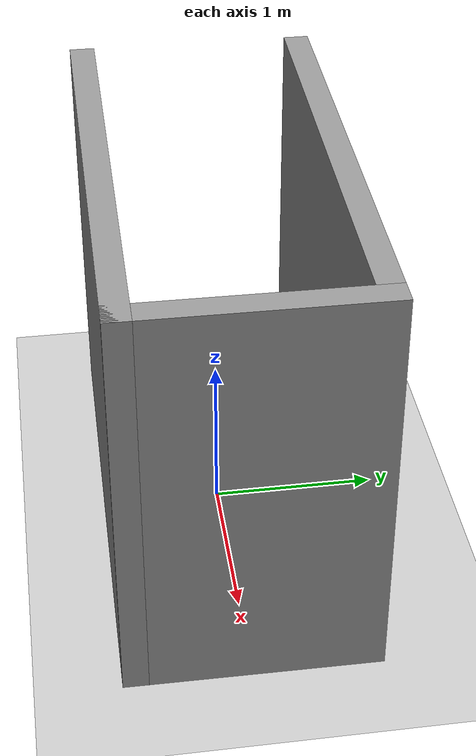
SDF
<sdf version="1.6">
 <world name="default">
  <light name="sun" type="directional">
   <pose>0 0 10 0 -0 0</pose>
   <diffuse>0.8 0.8 0.8 1</diffuse>
   <specular>0.2 0.2 0.2 1</specular>
   <attenuation>
    <range>1000</range>
    <constant>0.9</constant>
    <linear>0.01</linear>
    <quadratic>0.001</quadratic>
   </attenuation>
   <direction>0.5 0.1 -0.9</direction>
  </light>
  <scene><ambient>0.4 0.4 0.4 1</ambient><background>0.7 0.7 0.7 1</background><shadows>1</shadows></scene>
  <physics name="default_physics" default="0" type="ode">
   <max_step_size>0.01</max_step_size>
   <real_time_factor>1</real_time_factor>
   <real_time_update_rate>100</real_time_update_rate>
  </physics>
  <model name="Hallway">
   <pose>0.063044 0.023302 0 0 -0 3.13417</pose>
   <link name="Wall_31">
    <collision name="Wall_31_Collision">
     <geometry><box><size>3 0.15 2.5</size></box></geometry>
     <pose>0 0 1.25 0 -0 0</pose>
    </collision>
    <visual name="Wall_31_Visual">
     <pose>0 0 1.25 0 -0 0</pose>
     <geometry><box><size>3 0.15 2.5</size></box></geometry>
     <material>
      <script><uri>file://media/materials/scripts/gazebo.material</uri><name>Gazebo/Grey</name></script>
      <ambient>1 1 1 1</ambient>
     </material>
    </visual>
    <pose>0 0.675 0 0 -0 0</pose>
   </link>
   <link name="Wall_33">
    <collision name="Wall_33_Collision">
     <geometry><box><size>1.5 0.15 2.5</size></box></geometry>
     <pose>0 0 1.25 0 -0 0</pose>
    </collision>
    <visual name="Wall_33_Visual">
     <pose>0 0 1.25 0 -0 0</pose>
     <geometry><box><size>1.5 0.15 2.5</size></box></geometry>
     <material>
      <script><uri>file://media/materials/scripts/gazebo.material</uri><name>Gazebo/Grey</name></script>
      <ambient>1 1 1 1</ambient>
     </material>
    </visual>
    <pose>-1.425 0 0 0 0 -1.5708</pose>
   </link>
   <link name="Wall_34">
    <collision name="Wall_34_Collision">
     <geometry><box><size>3 0.15 2.5</size></box></geometry>
     <pose>0 0 1.25 0 -0 0</pose>
    </collision>
    <visual name="Wall_34_Visual">
     <pose>0 0 1.25 0 -0 0</pose>
     <geometry><box><size>3 0.15 2.5</size></box></geometry>
     <material>
      <script><uri>file://media/materials/scripts/gazebo.material</uri><name>Gazebo/Grey</name></script>
      <ambient>1 1 1 1</ambient>
     </material>
    </visual>
    <pose>0 -0.675 0 0 -0 0</pose>
   </link>
   <static>1</static>
  </model>
  <gravity>0 0 -9.8</gravity>
  <magnetic_field>6e-06 2.3e-05 -4.2e-05</magnetic_field>
  <atmosphere type="adiabatic"/>
  <spherical_coordinates>
   <surface_model>EARTH_WGS84</surface_model>
   <latitude_deg>0</latitude_deg>
   <longitude_deg>0</longitude_deg>
   <elevation>0</elevation>
   <heading_deg>0</heading_deg>
  </spherical_coordinates>
  <model name="ground_plane">
   <static>1</static>
   <link name="link">
    <collision name="collision">
     <geometry><plane><normal>0 0 1</normal><size>100 100</size></plane></geometry>
     <surface><friction><ode><mu>100</mu><mu2>50</mu2></ode></friction></surface>
    </collision>
    <visual name="visual">
     <cast_shadows>0</cast_shadows>
     <geometry><plane><normal>0 0 1</normal><size>100 100</size></plane></geometry>
     <material>
      <script><uri>file://media/materials/scripts/gazebo.material</uri><name>Gazebo/Grey</name></script>
     </material>
    </visual>
   </link>
   <pose>1.35153 -4.81688 0 0 -0 0</pose>
  </model>
 </world>
</sdf>
